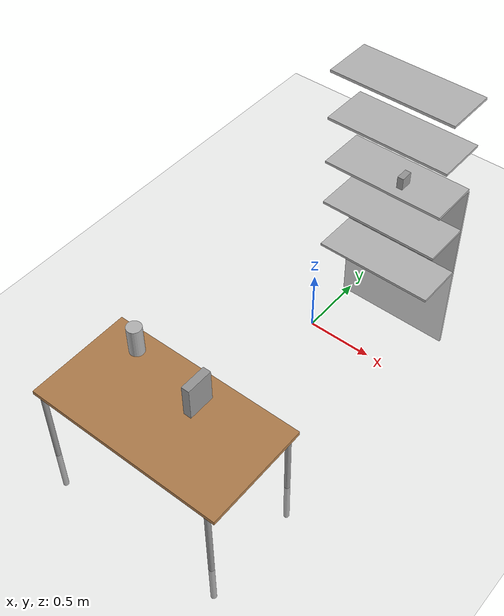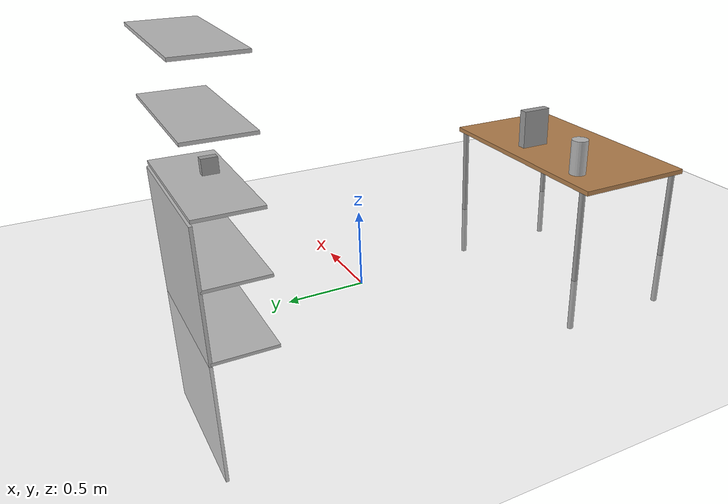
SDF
<sdf version="1.7">
 <world name="default">
  <light name="sun" type="directional">
   <pose>0 0 10 0 -0 0</pose>
   <diffuse>0.8 0.8 0.8 1</diffuse>
   <specular>0.2 0.2 0.2 1</specular>
   <attenuation>
    <range>1000</range>
    <constant>0.9</constant>
    <linear>0.01</linear>
    <quadratic>0.001</quadratic>
   </attenuation>
   <direction>-0.5 0.1 -0.9</direction>
   <spot><inner_angle>0</inner_angle><outer_angle>0</outer_angle><falloff>0</falloff></spot>
  </light>
  <model name="ground_plane">
   <static>1</static>
   <link name="link">
    <collision name="collision">
     <geometry><plane><normal>0 0 1</normal><size>100 100</size></plane></geometry>
     <surface>
      <contact><collide_bitmask>65535</collide_bitmask></contact>
      <friction><ode><mu>100</mu><mu2>50</mu2></ode></friction>
     </surface>
    </collision>
    <visual name="visual">
     <cast_shadows>0</cast_shadows>
     <geometry><plane><normal>0 0 1</normal><size>100 100</size></plane></geometry>
     <material>
      <script><uri>file://media/materials/scripts/gazebo.material</uri><name>Gazebo/Grey</name></script>
     </material>
    </visual>
   </link>
  </model>
  <gravity>0 0 -9.8</gravity>
  <magnetic_field>6e-06 2.3e-05 -4.2e-05</magnetic_field>
  <atmosphere type="adiabatic"/>
  <physics type="ode">
   <max_step_size>0.001</max_step_size>
   <real_time_factor>1</real_time_factor>
   <real_time_update_rate>1000</real_time_update_rate>
  </physics>
  <scene><ambient>0.4 0.4 0.4 1</ambient><background>0.7 0.7 0.7 1</background><shadows>1</shadows></scene>
  <audio><device>default</device></audio>
  <spherical_coordinates>
   <surface_model>EARTH_WGS84</surface_model>
   <latitude_deg>0</latitude_deg>
   <longitude_deg>0</longitude_deg>
   <elevation>0</elevation>
   <heading_deg>0</heading_deg>
  </spherical_coordinates>
  <model name="four_level_shelf">
   <static>1</static>
   <pose>0.046115 0.914282 0.010001 0 1e-06 -0.006638</pose>
   <link name="base">
    <collision name="base_collision"><geometry><box><size>1 0.4 0.02</size></box></geometry></collision>
    <visual name="base_visual"><geometry><box><size>1 0.4 0.02</size></box></geometry></visual>
    <inertial>
     <inertia><ixx>1</ixx><ixy>0</ixy><ixz>0</ixz><iyy>1</iyy><iyz>0</iyz><izz>1</izz></inertia>
     <mass>1</mass>
    </inertial>
   </link>
   <link name="level_1">
    <pose>0 0 0.45 0 -0 0</pose>
    <collision name="level_1_collision"><geometry><box><size>1 0.4 0.02</size></box></geometry></collision>
    <visual name="level_1_visual"><geometry><box><size>1 0.4 0.02</size></box></geometry></visual>
    <inertial>
     <inertia><ixx>1</ixx><ixy>0</ixy><ixz>0</ixz><iyy>1</iyy><iyz>0</iyz><izz>1</izz></inertia>
     <mass>1</mass>
    </inertial>
   </link>
   <link name="level_2">
    <pose>0 0 0.85 0 -0 0</pose>
    <collision name="level_2_collision"><geometry><box><size>1 0.4 0.02</size></box></geometry></collision>
    <visual name="level_2_visual"><geometry><box><size>1 0.4 0.02</size></box></geometry></visual>
    <inertial>
     <inertia><ixx>1</ixx><ixy>0</ixy><ixz>0</ixz><iyy>1</iyy><iyz>0</iyz><izz>1</izz></inertia>
     <mass>1</mass>
    </inertial>
   </link>
   <link name="level_3">
    <pose>0 0 1.25 0 -0 0</pose>
    <collision name="level_3_collision"><geometry><box><size>1 0.4 0.02</size></box></geometry></collision>
    <visual name="level_3_visual"><geometry><box><size>1 0.4 0.02</size></box></geometry></visual>
    <inertial>
     <inertia><ixx>1</ixx><ixy>0</ixy><ixz>0</ixz><iyy>1</iyy><iyz>0</iyz><izz>1</izz></inertia>
     <mass>1</mass>
    </inertial>
   </link>
   <link name="level_4">
    <pose>0 0 1.65 0 -0 0</pose>
    <collision name="level_4_collision"><geometry><box><size>1 0.4 0.02</size></box></geometry></collision>
    <visual name="level_4_visual"><geometry><box><size>1 0.4 0.02</size></box></geometry></visual>
    <inertial>
     <inertia><ixx>1</ixx><ixy>0</ixy><ixz>0</ixz><iyy>1</iyy><iyz>0</iyz><izz>1</izz></inertia>
     <mass>1</mass>
    </inertial>
   </link>
   <link name="vertical_supports">
    <pose>0 0.2 0 0 -0 0</pose>
    <collision name="vertical_supports_collision">
     <geometry><box><size>1 0.02 1.65</size></box></geometry>
    </collision>
    <visual name="vertical_supports_visual"><geometry><box><size>1 0.02 1.65</size></box></geometry></visual>
    <inertial>
     <inertia><ixx>1</ixx><ixy>0</ixy><ixz>0</ixz><iyy>1</iyy><iyz>0</iyz><izz>1</izz></inertia>
     <mass>1</mass>
    </inertial>
   </link>
   <joint name="support_to_base" type="fixed">
    <parent>__default__</parent>
    <child>__default__</child>
    <origin xyz="0.0 0.0 0.0" rpy="0.0 0.0 0.0"/>
   </joint>
   <joint name="base_to_level_1" type="fixed"><parent>base</parent><child>level_1</child></joint>
   <joint name="level_1_to_level_2" type="fixed"><parent>level_1</parent><child>level_2</child></joint>
   <joint name="level_2_to_level_3" type="fixed"><parent>level_2</parent><child>level_3</child></joint>
   <joint name="level_3_to_level_4" type="fixed"><parent>level_3</parent><child>level_4</child></joint>
  </model>
  <model name="unit_box">
   <pose>0.149213 0.846177 0.919996 -1e-06 2e-06 -7.7e-05</pose>
   <link name="link">
    <inertial>
     <mass>1</mass>
     <inertia>
      <ixx>0.166667</ixx>
      <ixy>0</ixy>
      <ixz>0</ixz>
      <iyy>0.166667</iyy>
      <iyz>0</iyz>
      <izz>0.166667</izz>
     </inertia>
    </inertial>
    <collision name="collision"><geometry><box><size>0.05 0.099999 0.1</size></box></geometry></collision>
    <visual name="visual">
     <geometry><box><size>0.05 0.099999 0.1</size></box></geometry>
     <material>
      <script><name>Gazebo/Grey</name><uri>file://media/materials/scripts/gazebo.material</uri></script>
     </material>
    </visual>
   </link>
  </model>
  <model name="table">
   <static>1</static>
   <link name="link">
    <collision name="surface">
     <pose>0 0 1 0 -0 0</pose>
     <geometry><box><size>1.5 0.8 0.03</size></box></geometry>
     <surface><friction><ode><mu>0.6</mu><mu2>0.6</mu2></ode></friction></surface>
    </collision>
    <visual name="visual1">
     <pose>0 0 1 0 -0 0</pose>
     <geometry><box><size>1.5 0.8 0.03</size></box></geometry>
     <material>
      <script><uri>file://media/materials/scripts/gazebo.material</uri><name>Gazebo/Wood</name></script>
     </material>
    </visual>
    <collision name="front_left_leg">
     <pose>0.68 0.38 0.5 0 -0 0</pose>
     <geometry><cylinder><radius>0.02</radius><length>1</length></cylinder></geometry>
    </collision>
    <visual name="front_left_leg">
     <pose>0.68 0.38 0.5 0 -0 0</pose>
     <geometry><cylinder><radius>0.02</radius><length>1</length></cylinder></geometry>
     <material>
      <script><uri>file://media/materials/scripts/gazebo.material</uri><name>Gazebo/Grey</name></script>
     </material>
    </visual>
    <collision name="front_right_leg">
     <pose>0.68 -0.38 0.5 0 -0 0</pose>
     <geometry><cylinder><radius>0.02</radius><length>1</length></cylinder></geometry>
    </collision>
    <visual name="front_right_leg">
     <pose>0.68 -0.38 0.5 0 -0 0</pose>
     <geometry><cylinder><radius>0.02</radius><length>1</length></cylinder></geometry>
     <material>
      <script><uri>file://media/materials/scripts/gazebo.material</uri><name>Gazebo/Grey</name></script>
     </material>
    </visual>
    <collision name="back_right_leg">
     <pose>-0.68 -0.38 0.5 0 -0 0</pose>
     <geometry><cylinder><radius>0.02</radius><length>1</length></cylinder></geometry>
    </collision>
    <visual name="back_right_leg">
     <pose>-0.68 -0.38 0.5 0 -0 0</pose>
     <geometry><cylinder><radius>0.02</radius><length>1</length></cylinder></geometry>
     <material>
      <script><uri>file://media/materials/scripts/gazebo.material</uri><name>Gazebo/Grey</name></script>
     </material>
    </visual>
    <collision name="back_left_leg">
     <pose>-0.68 0.38 0.5 0 -0 0</pose>
     <geometry><cylinder><radius>0.02</radius><length>1</length></cylinder></geometry>
    </collision>
    <visual name="back_left_leg">
     <pose>-0.68 0.38 0.5 0 -0 0</pose>
     <geometry><cylinder><radius>0.02</radius><length>1</length></cylinder></geometry>
     <material>
      <script><uri>file://media/materials/scripts/gazebo.material</uri><name>Gazebo/Grey</name></script>
     </material>
    </visual>
   </link>
   <pose>0.042326 -1.61891 -0.369408 0 -0 0</pose>
  </model>
  <model name="unit_box_0">
   <pose>0.179766 -1.45526 0.776533 -3e-06 -0 -0.000406</pose>
   <link name="link">
    <inertial>
     <mass>1</mass>
     <inertia>
      <ixx>0.166667</ixx>
      <ixy>0</ixy>
      <ixz>0</ixz>
      <iyy>0.166667</iyy>
      <iyz>0</iyz>
      <izz>0.166667</izz>
     </inertia>
    </inertial>
    <collision name="collision"><geometry><box><size>0.0606242 0.2018 0.26189</size></box></geometry></collision>
    <visual name="visual">
     <geometry><box><size>0.0606242 0.2018 0.26189</size></box></geometry>
     <material>
      <script><name>Gazebo/Grey</name><uri>file://media/materials/scripts/gazebo.material</uri></script>
     </material>
    </visual>
   </link>
  </model>
  <model name="beer">
   <link name="link">
    <pose>0 0 0.115 0 -0 0</pose>
    <inertial>
     <mass>0.39</mass>
     <inertia><ixx>0.00058</ixx><ixy>0</ixy><ixz>0</ixz><iyy>0.00058</iyy><iyz>0</iyz><izz>0.00019</izz></inertia>
    </inertial>
    <collision name="collision">
     <geometry><cylinder><radius>0.055</radius><length>0.23</length></cylinder></geometry>
    </collision>
    <visual name="visual">
     <geometry><cylinder><radius>0.055</radius><length>0.23</length></cylinder></geometry>
     <material>
      <script>
       <uri>model://beer/materials/scripts</uri>
       <uri>model://beer/materials/textures</uri>
       <name>Beer/Diffuse</name>
      </script>
     </material>
    </visual>
   </link>
   <pose>-0.425374 -1.36571 0.645593 1e-06 -2.7e-05 0.000235</pose>
  </model>
 </world>
</sdf>
